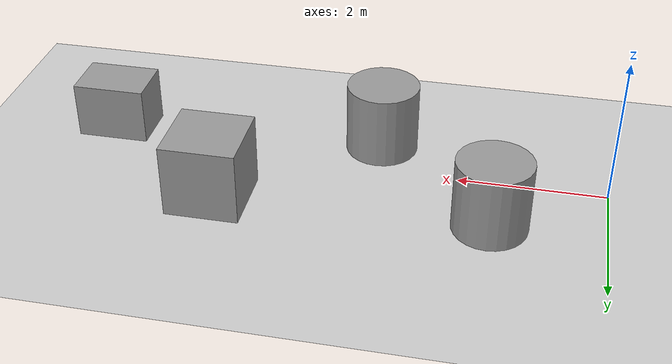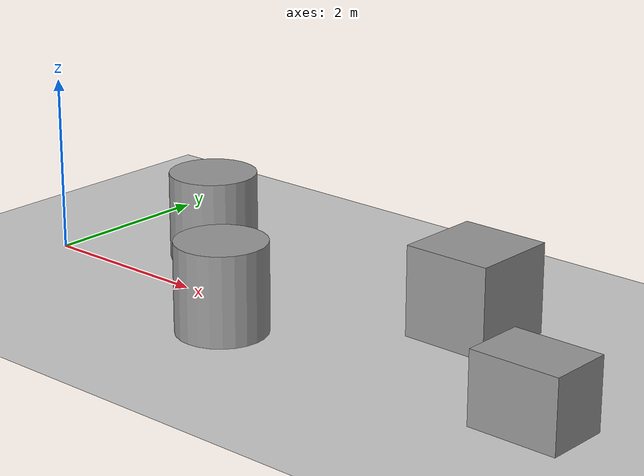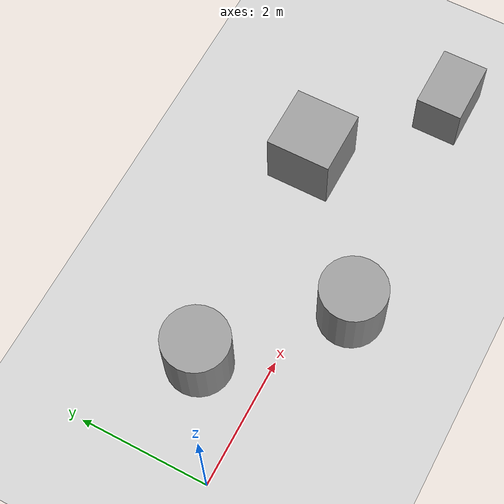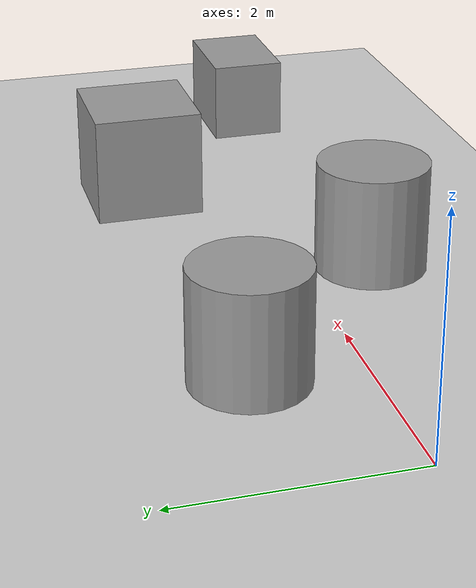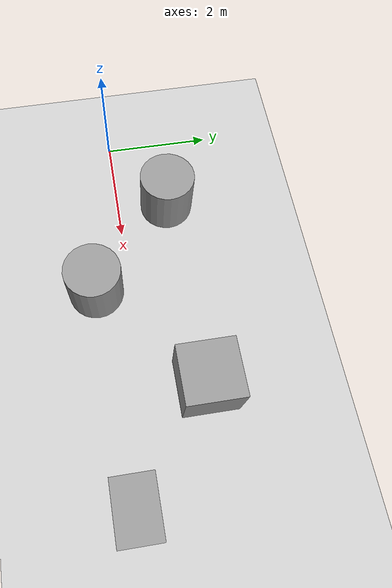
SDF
<sdf version="1.7">
 <world name="default">
  <model name="ground_plane">
   <static>1</static>
   <link name="link">
    <collision name="collision">
     <geometry><plane><normal>0 0 1</normal><size>100 100</size></plane></geometry>
     <surface><friction><ode><mu>0.7</mu><mu2>0.7</mu2></ode></friction></surface>
    </collision>
    <visual name="visual">
     <cast_shadows>0</cast_shadows>
     <geometry><plane><normal>0 0 1</normal><size>100 100</size></plane></geometry>
     <material>
      <script><uri>file://media/materials/scripts/gazebo.material</uri><name>Gazebo/Grey</name></script>
     </material>
    </visual>
   </link>
  </model>
  <light name="sun" type="directional">
   <pose>0 0 10 0 -0 0</pose>
   <diffuse>0.8 0.8 0.8 1</diffuse>
   <specular>0.1 0.1 0.1 1</specular>
   <attenuation>
    <range>1000</range>
    <constant>0.9</constant>
    <linear>0.01</linear>
    <quadratic>0.001</quadratic>
   </attenuation>
   <direction>-0.5 0.5 -1</direction>
   <spot><inner_angle>0</inner_angle><outer_angle>0</outer_angle><falloff>0</falloff></spot>
  </light>
  <gravity>0 0 -9.81</gravity>
  <magnetic_field>6e-06 2.3e-05 -4.2e-05</magnetic_field>
  <atmosphere type="adiabatic"/>
  <physics name="default_physics" default="0" type="ode">
   <max_step_size>0.001</max_step_size>
   <real_time_factor>1</real_time_factor>
   <real_time_update_rate>1000</real_time_update_rate>
  </physics>
  <scene><ambient>0.4 0.4 0.4 1</ambient><background>0.7 0.7 0.7 1</background><shadows>1</shadows></scene>
  <spherical_coordinates>
   <surface_model>EARTH_WGS84</surface_model>
   <latitude_deg>0</latitude_deg>
   <longitude_deg>0</longitude_deg>
   <elevation>0</elevation>
   <heading_deg>0</heading_deg>
  </spherical_coordinates>
  <model name="unit_cylinder">
   <pose>1.48603 0.951728 0.499992 -3e-06 3e-06 0</pose>
   <link name="link">
    <inertial>
     <mass>1</mass>
     <inertia><ixx>0.145833</ixx><ixy>0</ixy><ixz>0</ixz><iyy>0.145833</iyy><iyz>0</iyz><izz>0.125</izz></inertia>
    </inertial>
    <collision name="collision">
     <geometry><cylinder><radius>0.5</radius><length>1</length></cylinder></geometry>
    </collision>
    <visual name="visual">
     <geometry><cylinder><radius>0.5</radius><length>1</length></cylinder></geometry>
     <material>
      <script><name>Gazebo/Grey</name><uri>file://media/materials/scripts/gazebo.material</uri></script>
     </material>
    </visual>
   </link>
  </model>
  <model name="unit_cylinder_0">
   <pose>3.14697 -0.627551 0.499997 3e-06 4e-06 -0</pose>
   <link name="link">
    <inertial>
     <mass>1</mass>
     <inertia><ixx>0.145833</ixx><ixy>0</ixy><ixz>0</ixz><iyy>0.145833</iyy><iyz>0</iyz><izz>0.125</izz></inertia>
    </inertial>
    <collision name="collision">
     <geometry><cylinder><radius>0.5</radius><length>1</length></cylinder></geometry>
    </collision>
    <visual name="visual">
     <geometry><cylinder><radius>0.5</radius><length>1</length></cylinder></geometry>
     <material>
      <script><name>Gazebo/Grey</name><uri>file://media/materials/scripts/gazebo.material</uri></script>
     </material>
    </visual>
   </link>
  </model>
  <model name="unit_box">
   <pose>5.15567 1.03511 0.500001 0 -0 0</pose>
   <link name="link">
    <inertial>
     <mass>1</mass>
     <inertia>
      <ixx>0.166667</ixx>
      <ixy>0</ixy>
      <ixz>0</ixz>
      <iyy>0.166667</iyy>
      <iyz>0</iyz>
      <izz>0.166667</izz>
     </inertia>
    </inertial>
    <collision name="collision"><geometry><box><size>1 0.999997 1</size></box></geometry></collision>
    <visual name="visual">
     <geometry><box><size>1 0.999997 1</size></box></geometry>
     <material>
      <script><name>Gazebo/Grey</name><uri>file://media/materials/scripts/gazebo.material</uri></script>
     </material>
    </visual>
   </link>
  </model>
  <model name="unit_box_clone">
   <pose>6.96476 -0.42229 0.39245 0 -0 0</pose>
   <link name="link">
    <inertial>
     <mass>1</mass>
     <inertia>
      <ixx>0.166667</ixx>
      <ixy>0</ixy>
      <ixz>0</ixz>
      <iyy>0.166667</iyy>
      <iyz>0</iyz>
      <izz>0.166667</izz>
     </inertia>
    </inertial>
    <collision name="collision"><geometry><box><size>1 0.712731 0.7849</size></box></geometry></collision>
    <visual name="visual">
     <geometry><box><size>1 0.712731 0.7849</size></box></geometry>
     <material>
      <script><name>Gazebo/Grey</name><uri>file://media/materials/scripts/gazebo.material</uri></script>
     </material>
    </visual>
   </link>
  </model>
 </world>
</sdf>
